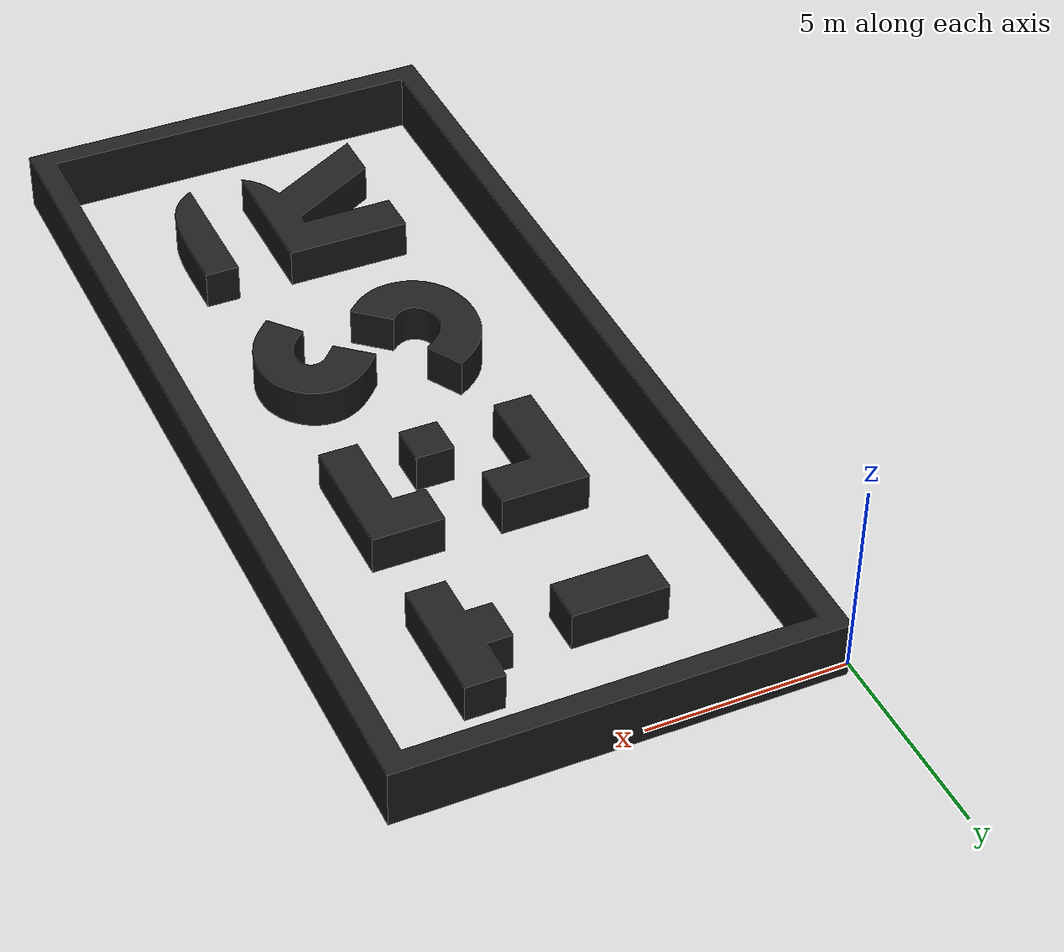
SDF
<sdf version='1.5'>
    <!-- Draw Circle -->
    <model name='bearyx_world'>
      <static>1</static>
      <link name='symbol'>
        <!-- Draw Wall -->
        <collision name='body'>
        <pose>0 0 -0.3 0 0 -1.5708</pose>
        <geometry>
          <mesh>
            <uri>model://bearyx_world/meshes/tesr_lab.dae</uri>
            <scale>2.2 2.2 1.0</scale>
          </mesh>
        </geometry>
        <max_contacts>10</max_contacts>
        <surface>
          <bounce/>
          <friction>
            <ode/>
          </friction>
          <contact>
            <ode/>
          </contact>
        </surface>
      </collision>

      <visual name='body'>
        <pose>0 0 -0.3 0 0 -1.5708</pose>
        <geometry>
          <mesh>
            <uri>model://bearyx_world/meshes/tesr_lab.dae</uri>
            <scale>2.2 2.2 1.0</scale>
          </mesh>
        </geometry>
        <material>
          <script>
            <uri>file://media/materials/scripts/gazebo.material</uri>
            <name>Gazebo/FlatBlack</name>
          </script>
        </material>
      </visual>
    </link>
  </model>
</sdf>
